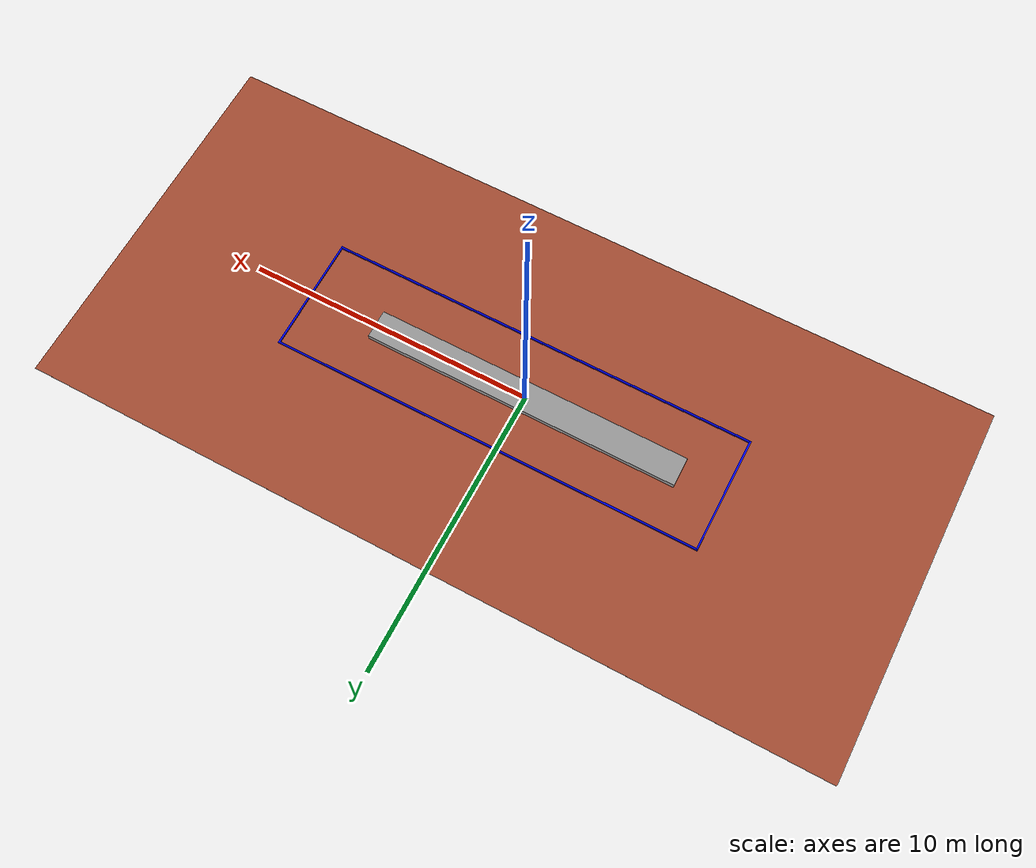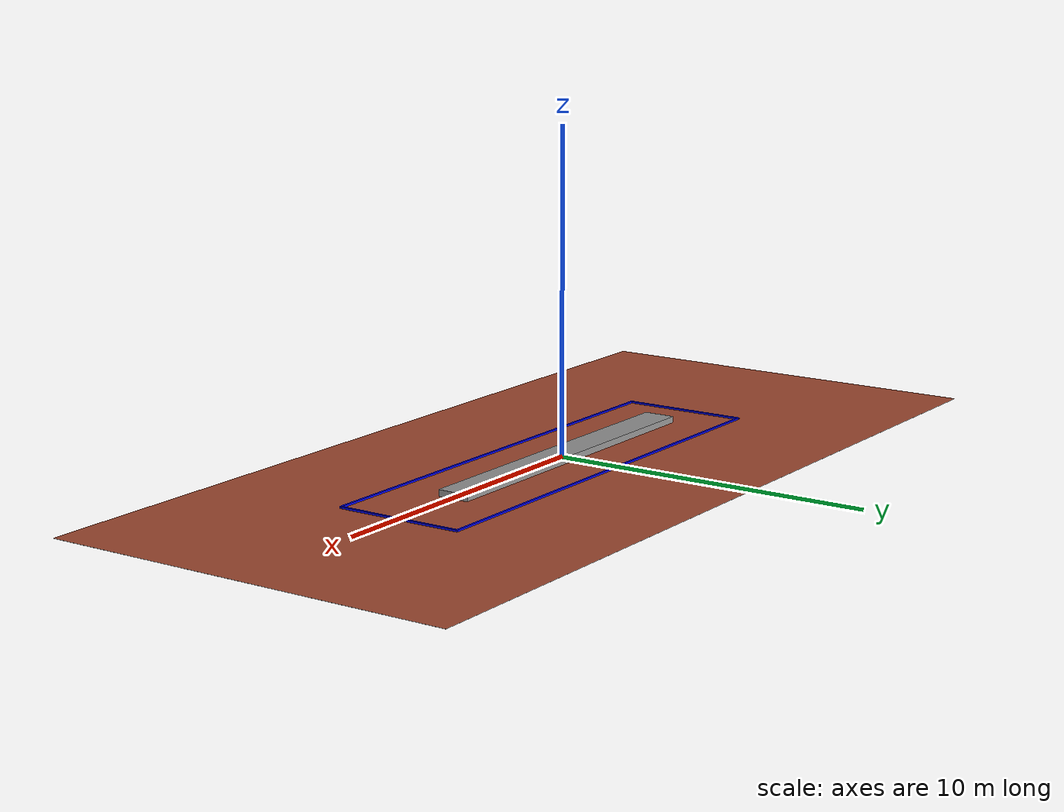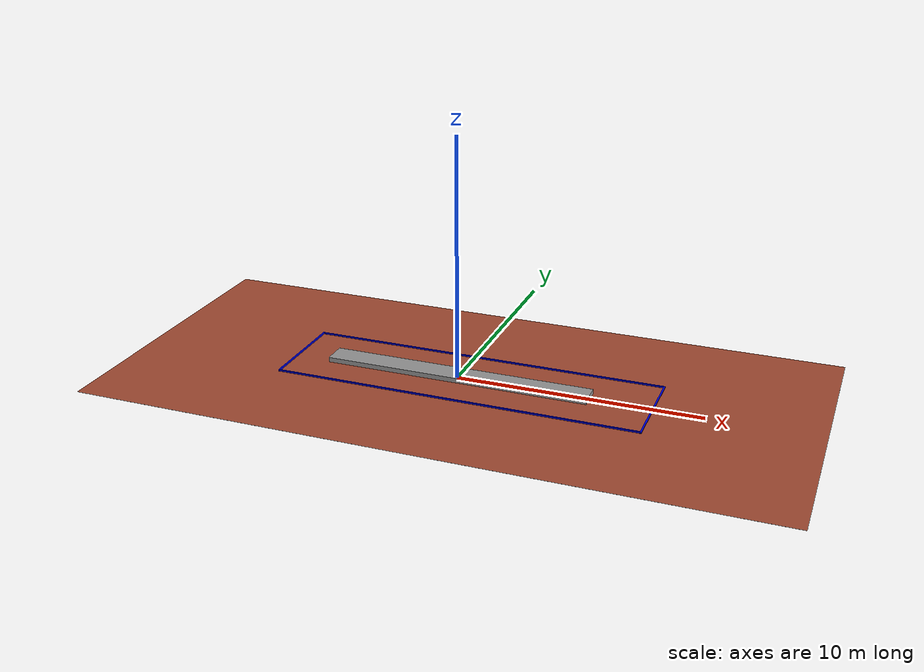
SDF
<?xml version='1.0'?>
<sdf version='1.6'>
  <model name='SingleI-2'>
    <pose frame=''>0.5 0 0 0 -0 0</pose>
    <link name='Wall_0'>
      <collision name='Wall_0_Collision'>
        <geometry>
          <box>
            <size>15.06 0.06 0.06</size>
          </box>
        </geometry>
        <pose frame=''>0 0 0.03 0 -0 0</pose>
      </collision>
      <visual name='Wall_0_Visual'>
        <pose frame=''>0 0 0.03 0 -0 0</pose>
        <geometry>
          <box>
            <size>15.06 0.06 0.06</size>
          </box>
        </geometry>
        <material>
          <script>
            <uri>file://media/materials/scripts/gazebo.material</uri>
            <name>Gazebo/Grey</name>
          </script>
          <ambient>0 0 1 1</ambient>
        </material>
        <meta>
          <layer>0</layer>
        </meta>
      </visual>
      <pose frame=''>0 2 0 0 -0 0</pose>
    </link>
    <link name='Wall_10'>
      <collision name='Wall_10_Collision'>
        <geometry>
          <box>
            <size>28 13 0.001</size>
          </box>
        </geometry>
        <pose frame=''>0 0 0.0005 0 -0 0</pose>
      </collision>
      <visual name='Wall_10_Visual'>
        <pose frame=''>0 0 0.0005 0 -0 0</pose>
        <geometry>
          <box>
            <size>28 13 0.001</size>
          </box>
        </geometry>
        <material>
          <script>
            <uri>file://media/materials/scripts/gazebo.material</uri>
            <name>Gazebo/Bricks</name>
          </script>
          <ambient>1 1 1 1</ambient>
        </material>
        <meta>
          <layer>0</layer>
        </meta>
      </visual>
      <pose frame=''>0 0 0 0 -0 0</pose>
    </link>
    <link name='Wall_2'>
      <collision name='Wall_2_Collision'>
        <geometry>
          <box>
            <size>15.06 0.06 0.06</size>
          </box>
        </geometry>
        <pose frame=''>0 0 0.03 0 -0 0</pose>
      </collision>
      <visual name='Wall_2_Visual'>
        <pose frame=''>0 0 0.03 0 -0 0</pose>
        <geometry>
          <box>
            <size>15.06 0.06 0.06</size>
          </box>
        </geometry>
        <material>
          <script>
            <uri>file://media/materials/scripts/gazebo.material</uri>
            <name>Gazebo/Grey</name>
          </script>
          <ambient>0 0 1 1</ambient>
        </material>
        <meta>
          <layer>0</layer>
        </meta>
      </visual>
      <pose frame=''>0 -2 0 0 -0 0</pose>
    </link>
    <link name='Wall_4'>
      <collision name='Wall_4_Collision'>
        <geometry>
          <box>
            <size>4.06 0.06 0.06</size>
          </box>
        </geometry>
        <pose frame=''>0 0 0.03 0 -0 0</pose>
      </collision>
      <visual name='Wall_4_Visual'>
        <pose frame=''>0 0 0.03 0 -0 0</pose>
        <geometry>
          <box>
            <size>4.06 0.06 0.06</size>
          </box>
        </geometry>
        <material>
          <script>
            <uri>file://media/materials/scripts/gazebo.material</uri>
            <name>Gazebo/Grey</name>
          </script>
          <ambient>0 0 1 1</ambient>
        </material>
        <meta>
          <layer>0</layer>
        </meta>
      </visual>
      <pose frame=''>-7.5 0 0 0 -0 1.5708</pose>
    </link>
    <link name='Wall_6'>
      <collision name='Wall_6_Collision'>
        <geometry>
          <box>
            <size>4.06 0.06 0.06</size>
          </box>
        </geometry>
        <pose frame=''>0 0 0.03 0 -0 0</pose>
      </collision>
      <visual name='Wall_6_Visual'>
        <pose frame=''>0 0 0.03 0 -0 0</pose>
        <geometry>
          <box>
            <size>4.06 0.06 0.06</size>
          </box>
        </geometry>
        <material>
          <script>
            <uri>file://media/materials/scripts/gazebo.material</uri>
            <name>Gazebo/Grey</name>
          </script>
          <ambient>0 0 1 1</ambient>
        </material>
        <meta>
          <layer>0</layer>
        </meta>
      </visual>
      <pose frame=''>7.5 0 0 0 0 -1.5708</pose>
    </link>
    <link name='Wall_8'>
      <collision name='Wall_8_Collision'>
        <geometry>
          <box>
            <size>11 1 0.2</size>
          </box>
        </geometry>
        <pose frame=''>0 0 0.1 0 -0 0</pose>
      </collision>
      <visual name='Wall_8_Visual'>
        <pose frame=''>0 0 0.1 0 -0 0</pose>
        <geometry>
          <box>
            <size>11 1 0.2</size>
          </box>
        </geometry>
        <material>
          <script>
            <uri>file://media/materials/scripts/gazebo.material</uri>
            <name>Gazebo/Grey</name>
          </script>
          <ambient>1 1 1 1</ambient>
        </material>
        <meta>
          <layer>0</layer>
        </meta>
      </visual>
      <pose frame=''>-0.5 0 0 0 -0 0</pose>
    </link>
    <static>1</static>
  </model>
</sdf>
